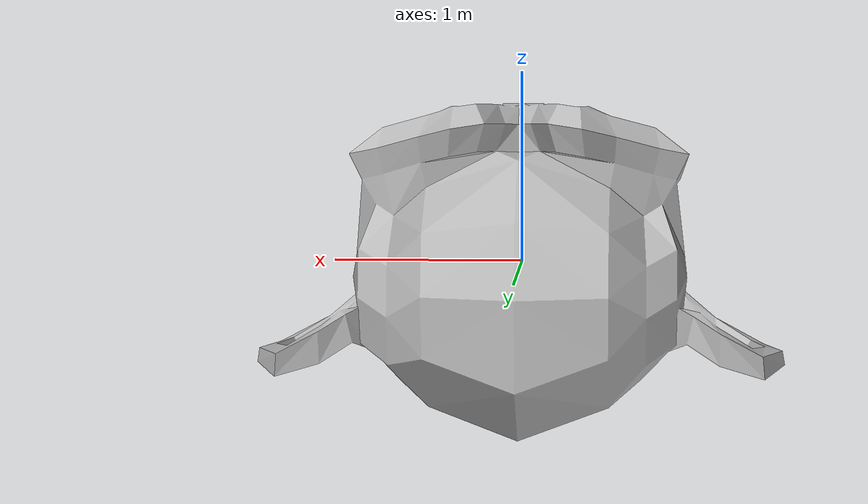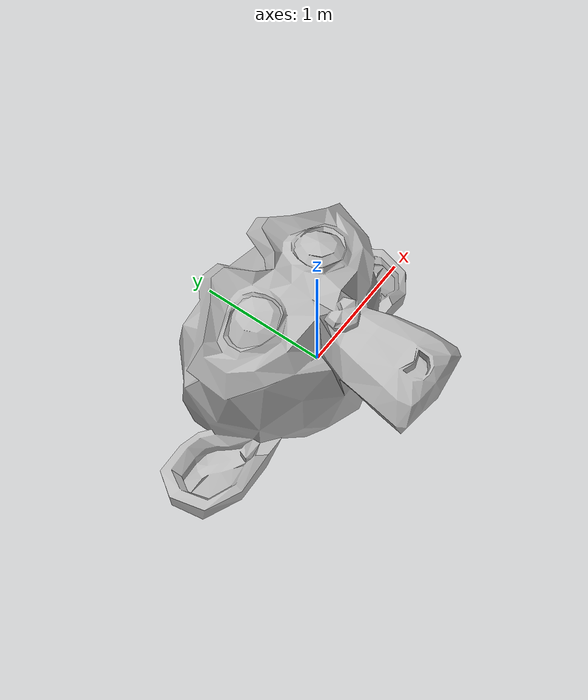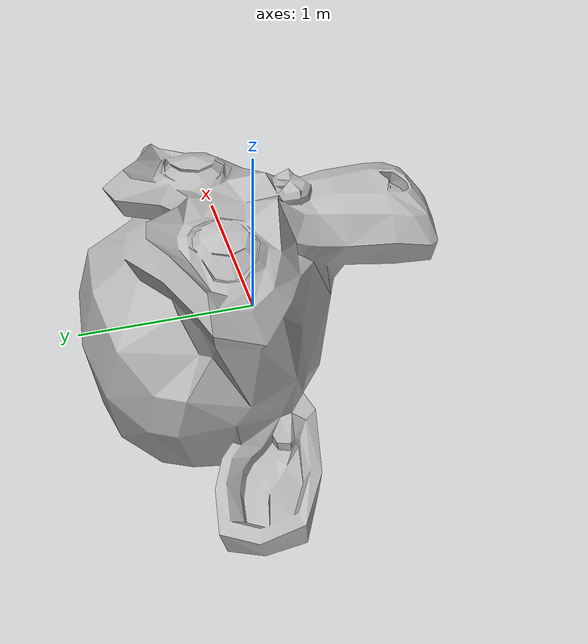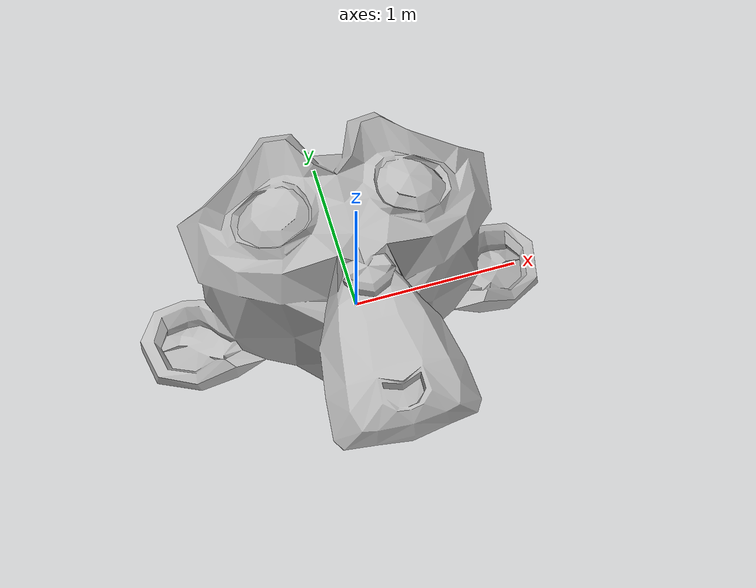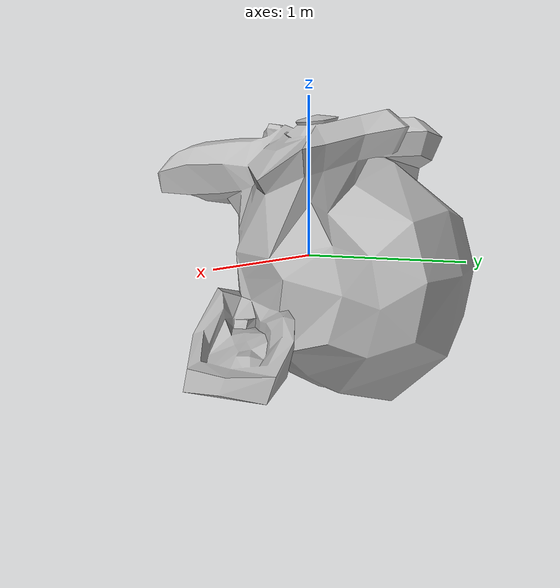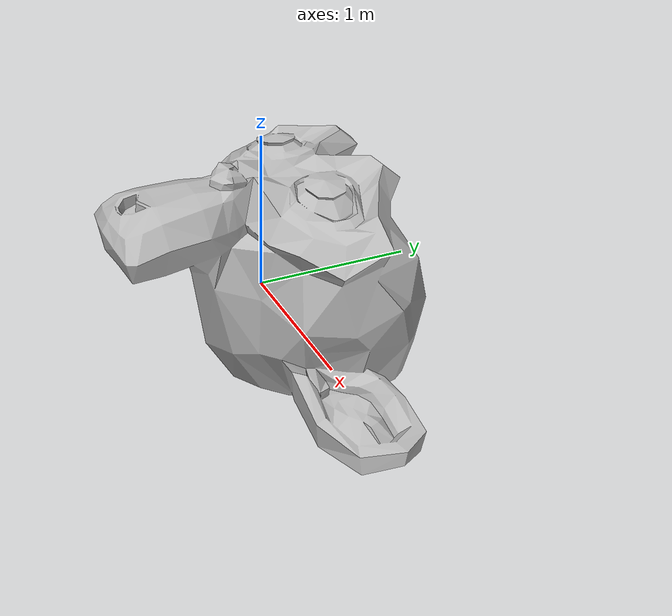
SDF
<?xml version="1.0" ?>
<sdf version='1.5'>
 <model name="monckey">

    <pose>0 0 0.0 0 0 0</pose>

    <self_collide>false</self_collide>

    <static>true</static>
    <link name="monckey_link">
          <pose frame=''>0 0 0 0 -0 0</pose>
          <collision name="monckey_collisions">
            <geometry>
              <mesh>
                  <scale>1 1 1</scale>
                    <uri>model://monckey/meshes/monckey.dae</uri>
              </mesh>
            </geometry>
            <surface>
              <contact>
                <ode>
                  <min_depth>0.001</min_depth>
                  <max_vel>0</max_vel>
                </ode>
              </contact>
              <friction>
                <ode/>
              </friction>
            </surface>
          </collision>
          <visual name="monckey_visual">
            <geometry>
              <mesh>
                  <scale>1 1 1</scale>
                    <uri>model://monckey/meshes/monckey.obj</uri>
              </mesh>
            </geometry>
          </visual>
          <gravity>1</gravity>
        </link>
</model>
</sdf>
